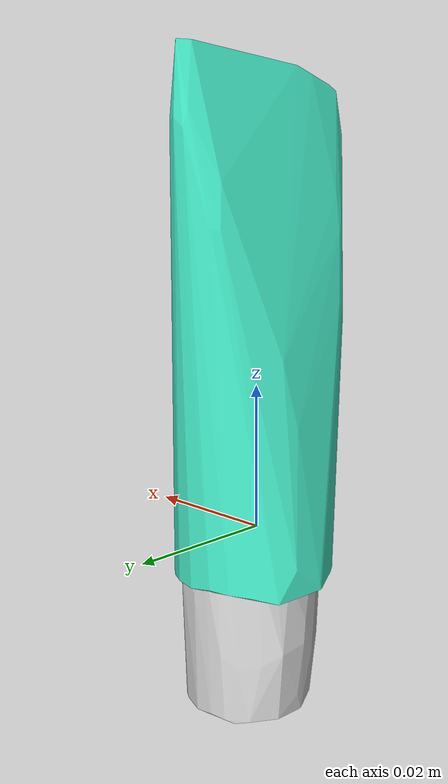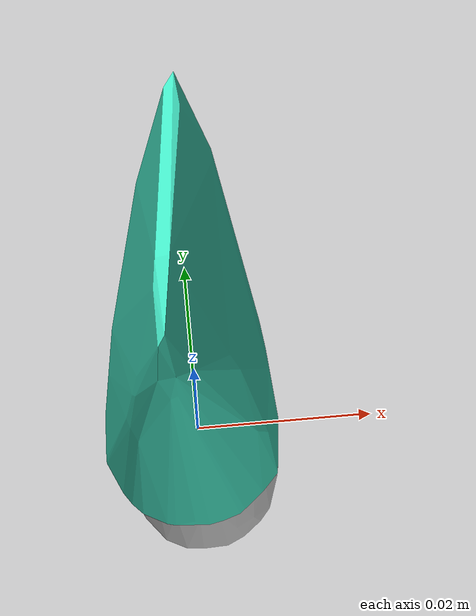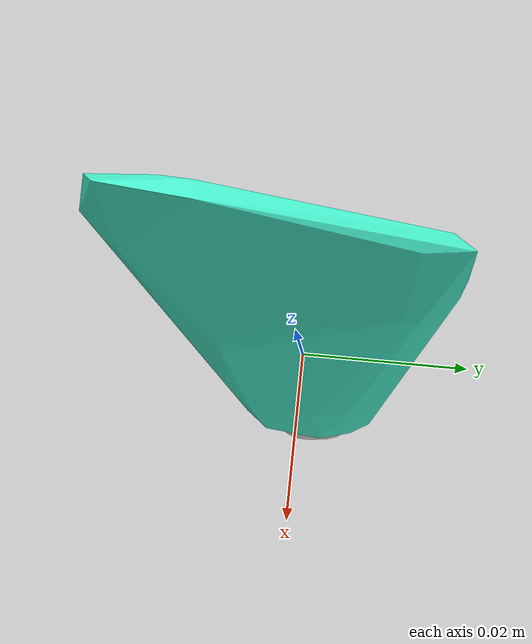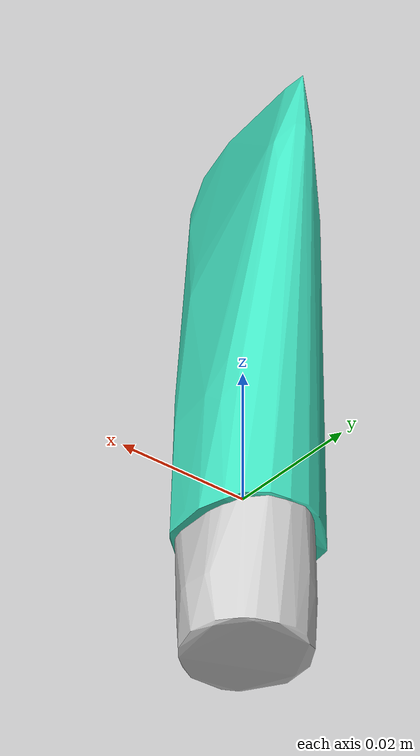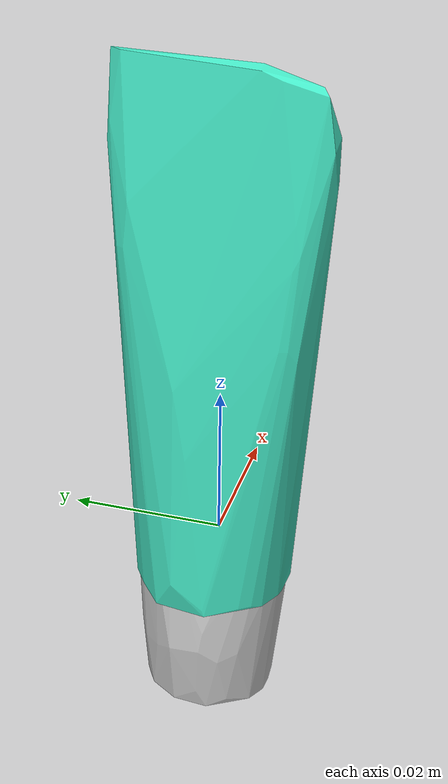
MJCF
<mujoco model="Toothpaste">
  <asset>
    <mesh file="meshes/Toothpaste/Toothpaste_0.stl" name="Toothpaste_0" scale="0.6 0.6 0.4"/>
    <mesh file="meshes/Toothpaste/Toothpaste_1.stl" name="Toothpaste_1" scale="0.8 0.6 1."/>
  </asset>
  <worldbody>
    <body>
      <body name="collision">
        <geom condim="4" density="100" friction="1.5 0.3 0.1" group="1" mesh="Toothpaste_0" pos="0 0 0" rgba="0.8 0.8 0.8 1" solimp="0.998 0.998 0.001" solref="0.002 1" type="mesh"/>
        <geom condim="4" density="100" friction="1.5 0.3 0.1" group="1" mesh="Toothpaste_1" pos="0 0 0" rgba="0.26 0.89 0.76 1" solimp="0.998 0.998 0.001" solref="0.002 1" type="mesh"/>
      </body>
      <body name="visual">
        <geom conaffinity="0" contype="0" group="0" mass="0.0001" mesh="Toothpaste_0" pos="0 0 0" rgba="0 1 0 1" type="mesh"/>
        <geom conaffinity="0" contype="0" group="0" mass="0.0001" mesh="Toothpaste_1" pos="0 0 0" rgba="0 1 0 1" type="mesh"/>
      </body>
      <site name="bottom_site" pos="0 0 -0.06" rgba="0 0 0 0" size="0.005"/>
      <site name="top_site" pos="0 0 0.04" rgba="0 0 0 0" size="0.005"/>
      <site name="horizontal_radius_site" pos="0.025 0.025 0" rgba="0 0 0 0" size="0.005"/>
    </body>
  </worldbody>
</mujoco>
